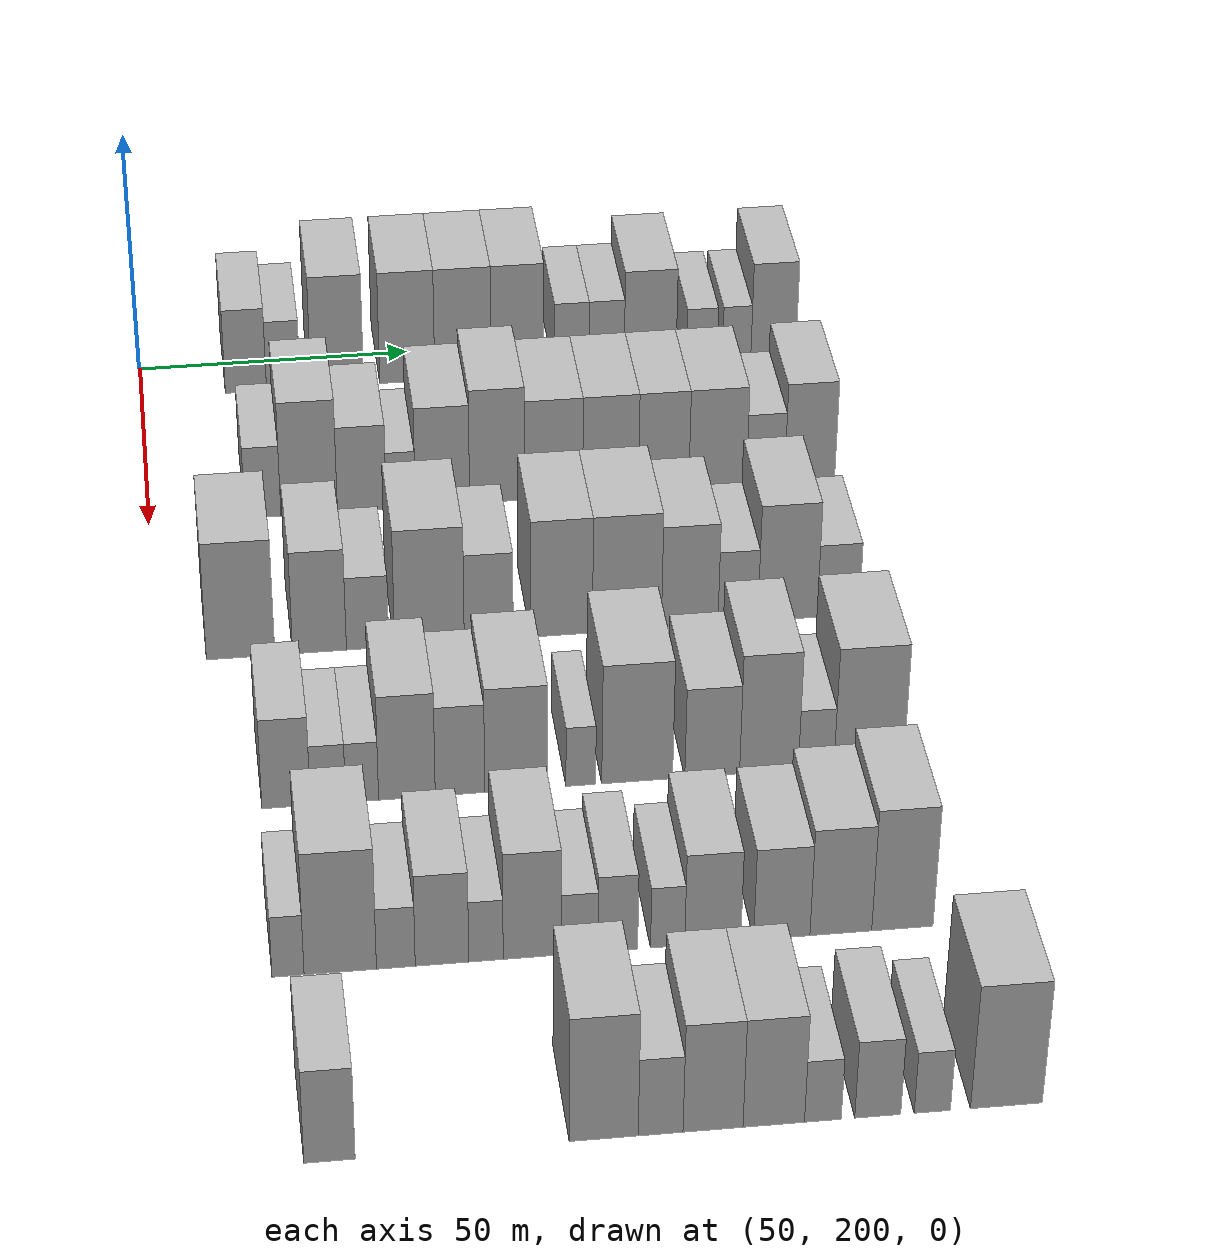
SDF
<sdf version="1.6">
 <world name="default">
  <model name="building_92">
   <static>1</static>
   <pose>50.0000 219.2616 0 0.000000 0.000000 0.000000</pose>
   <link name="link">
    <pose>0 0 9.00 0 0 0</pose>
    <collision name="collision"><geometry><box><size>20.0000 7.6127 18.0000</size></box></geometry></collision>
    <visual name="visual">
     <cast_shadows>0</cast_shadows>
     <geometry><box><size>20.0000 7.6127 18.0000</size></box></geometry>
     <material>
      <script>
       <uri>model://HANNAS_wall/materials/scripts</uri>
       <uri>model://HANNAS_wall/materials/textures</uri>
       <name>vrc/HANNAS_wall</name>
      </script>
     </material>
    </visual>
   </link>
  </model>
  <model name="building_93">
   <static>1</static>
   <pose>50.0000 226.1811 0 0.000000 0.000000 0.000000</pose>
   <link name="link">
    <pose>0 0 7.50 0 0 0</pose>
    <collision name="collision"><geometry><box><size>20.0000 6.2263 15.0000</size></box></geometry></collision>
    <visual name="visual">
     <cast_shadows>0</cast_shadows>
     <geometry><box><size>20.0000 6.2263 15.0000</size></box></geometry>
     <material>
      <script>
       <uri>model://HANNAS_wall/materials/scripts</uri>
       <uri>model://HANNAS_wall/materials/textures</uri>
       <name>vrc/HANNAS_wall</name>
      </script>
     </material>
    </visual>
   </link>
  </model>
  <model name="building_94">
   <static>1</static>
   <pose>50.0000 236.1768 0 0.000000 0.000000 0.000000</pose>
   <link name="link">
    <pose>0 0 12.00 0 0 0</pose>
    <collision name="collision"><geometry><box><size>20.0000 9.7651 24.0000</size></box></geometry></collision>
    <visual name="visual">
     <cast_shadows>0</cast_shadows>
     <geometry><box><size>20.0000 9.7651 24.0000</size></box></geometry>
     <material>
      <script>
       <uri>model://HANNAS_wall/materials/scripts</uri>
       <uri>model://HANNAS_wall/materials/textures</uri>
       <name>vrc/HANNAS_wall</name>
      </script>
     </material>
    </visual>
   </link>
  </model>
  <model name="building_95">
   <static>1</static>
   <pose>50.0000 249.1840 0 0.000000 0.000000 0.000000</pose>
   <link name="link">
    <pose>0 0 12.00 0 0 0</pose>
    <collision name="collision"><geometry><box><size>20.0000 10.2492 24.0000</size></box></geometry></collision>
    <visual name="visual">
     <cast_shadows>0</cast_shadows>
     <geometry><box><size>20.0000 10.2492 24.0000</size></box></geometry>
     <material>
      <script>
       <uri>model://HANNAS_wall/materials/scripts</uri>
       <uri>model://HANNAS_wall/materials/textures</uri>
       <name>vrc/HANNAS_wall</name>
      </script>
     </material>
    </visual>
   </link>
  </model>
  <model name="building_96">
   <static>1</static>
   <pose>50.0000 259.5714 0 0.000000 0.000000 0.000000</pose>
   <link name="link">
    <pose>0 0 12.00 0 0 0</pose>
    <collision name="collision"><geometry><box><size>20.0000 10.5257 24.0000</size></box></geometry></collision>
    <visual name="visual">
     <cast_shadows>0</cast_shadows>
     <geometry><box><size>20.0000 10.5257 24.0000</size></box></geometry>
     <material>
      <script>
       <uri>model://HANNAS_wall/materials/scripts</uri>
       <uri>model://HANNAS_wall/materials/textures</uri>
       <name>vrc/HANNAS_wall</name>
      </script>
     </material>
    </visual>
   </link>
  </model>
  <model name="building_97">
   <static>1</static>
   <pose>50.0000 269.7643 0 0.000000 0.000000 0.000000</pose>
   <link name="link">
    <pose>0 0 12.00 0 0 0</pose>
    <collision name="collision"><geometry><box><size>20.0000 9.8600 24.0000</size></box></geometry></collision>
    <visual name="visual">
     <cast_shadows>0</cast_shadows>
     <geometry><box><size>20.0000 9.8600 24.0000</size></box></geometry>
     <material>
      <script>
       <uri>model://HANNAS_wall/materials/scripts</uri>
       <uri>model://HANNAS_wall/materials/textures</uri>
       <name>vrc/HANNAS_wall</name>
      </script>
     </material>
    </visual>
   </link>
  </model>
  <model name="building_98">
   <static>1</static>
   <pose>50.0000 279.9234 0 0.000000 0.000000 0.000000</pose>
   <link name="link">
    <pose>0 0 7.50 0 0 0</pose>
    <collision name="collision"><geometry><box><size>20.0000 6.4581 15.0000</size></box></geometry></collision>
    <visual name="visual">
     <cast_shadows>0</cast_shadows>
     <geometry><box><size>20.0000 6.4581 15.0000</size></box></geometry>
     <material>
      <script>
       <uri>model://HANNAS_wall/materials/scripts</uri>
       <uri>model://HANNAS_wall/materials/textures</uri>
       <name>vrc/HANNAS_wall</name>
      </script>
     </material>
    </visual>
   </link>
  </model>
  <model name="building_99">
   <static>1</static>
   <pose>50.0000 286.4619 0 0.000000 0.000000 0.000000</pose>
   <link name="link">
    <pose>0 0 7.50 0 0 0</pose>
    <collision name="collision"><geometry><box><size>20.0000 6.6190 15.0000</size></box></geometry></collision>
    <visual name="visual">
     <cast_shadows>0</cast_shadows>
     <geometry><box><size>20.0000 6.6190 15.0000</size></box></geometry>
     <material>
      <script>
       <uri>model://HANNAS_wall/materials/scripts</uri>
       <uri>model://HANNAS_wall/materials/textures</uri>
       <name>vrc/HANNAS_wall</name>
      </script>
     </material>
    </visual>
   </link>
  </model>
  <model name="building_100">
   <static>1</static>
   <pose>50.0000 294.6523 0 0.000000 0.000000 0.000000</pose>
   <link name="link">
    <pose>0 0 10.50 0 0 0</pose>
    <collision name="collision"><geometry><box><size>20.0000 9.7616 21.0000</size></box></geometry></collision>
    <visual name="visual">
     <cast_shadows>0</cast_shadows>
     <geometry><box><size>20.0000 9.7616 21.0000</size></box></geometry>
     <material>
      <script>
       <uri>model://HANNAS_wall/materials/scripts</uri>
       <uri>model://HANNAS_wall/materials/textures</uri>
       <name>vrc/HANNAS_wall</name>
      </script>
     </material>
    </visual>
   </link>
  </model>
  <model name="building_101">
   <static>1</static>
   <pose>50.0000 304.4187 0 0.000000 0.000000 0.000000</pose>
   <link name="link">
    <pose>0 0 6.00 0 0 0</pose>
    <collision name="collision"><geometry><box><size>20.0000 5.7712 12.0000</size></box></geometry></collision>
    <visual name="visual">
     <cast_shadows>0</cast_shadows>
     <geometry><box><size>20.0000 5.7712 12.0000</size></box></geometry>
     <material>
      <script>
       <uri>model://HANNAS_wall/materials/scripts</uri>
       <uri>model://HANNAS_wall/materials/textures</uri>
       <name>vrc/HANNAS_wall</name>
      </script>
     </material>
    </visual>
   </link>
  </model>
  <model name="building_102">
   <static>1</static>
   <pose>50.0000 310.9854 0 0.000000 0.000000 0.000000</pose>
   <link name="link">
    <pose>0 0 6.00 0 0 0</pose>
    <collision name="collision"><geometry><box><size>20.0000 5.3621 12.0000</size></box></geometry></collision>
    <visual name="visual">
     <cast_shadows>0</cast_shadows>
     <geometry><box><size>20.0000 5.3621 12.0000</size></box></geometry>
     <material>
      <script>
       <uri>model://HANNAS_wall/materials/scripts</uri>
       <uri>model://HANNAS_wall/materials/textures</uri>
       <name>vrc/HANNAS_wall</name>
      </script>
     </material>
    </visual>
   </link>
  </model>
  <model name="building_103">
   <static>1</static>
   <pose>50.0000 317.9177 0 0.000000 0.000000 0.000000</pose>
   <link name="link">
    <pose>0 0 10.50 0 0 0</pose>
    <collision name="collision"><geometry><box><size>20.0000 8.5025 21.0000</size></box></geometry></collision>
    <visual name="visual">
     <cast_shadows>0</cast_shadows>
     <geometry><box><size>20.0000 8.5025 21.0000</size></box></geometry>
     <material>
      <script>
       <uri>model://HANNAS_wall/materials/scripts</uri>
       <uri>model://HANNAS_wall/materials/textures</uri>
       <name>vrc/HANNAS_wall</name>
      </script>
     </material>
    </visual>
   </link>
  </model>
  <model name="building_225">
   <static>1</static>
   <pose>90.0000 220.0633 0 0.000000 0.000000 0.000000</pose>
   <link name="link">
    <pose>0 0 7.50 0 0 0</pose>
    <collision name="collision"><geometry><box><size>20.0000 6.3695 15.0000</size></box></geometry></collision>
    <visual name="visual">
     <cast_shadows>0</cast_shadows>
     <geometry><box><size>20.0000 6.3695 15.0000</size></box></geometry>
     <material>
      <script>
       <uri>model://HANNAS_wall/materials/scripts</uri>
       <uri>model://HANNAS_wall/materials/textures</uri>
       <name>vrc/HANNAS_wall</name>
      </script>
     </material>
    </visual>
   </link>
  </model>
  <model name="building_226">
   <static>1</static>
   <pose>90.0000 228.2520 0 0.000000 0.000000 0.000000</pose>
   <link name="link">
    <pose>0 0 12.00 0 0 0</pose>
    <collision name="collision"><geometry><box><size>20.0000 10.0078 24.0000</size></box></geometry></collision>
    <visual name="visual">
     <cast_shadows>0</cast_shadows>
     <geometry><box><size>20.0000 10.0078 24.0000</size></box></geometry>
     <material>
      <script>
       <uri>model://HANNAS_wall/materials/scripts</uri>
       <uri>model://HANNAS_wall/materials/textures</uri>
       <name>vrc/HANNAS_wall</name>
      </script>
     </material>
    </visual>
   </link>
  </model>
  <model name="building_227">
   <static>1</static>
   <pose>90.0000 237.5945 0 0.000000 0.000000 0.000000</pose>
   <link name="link">
    <pose>0 0 9.00 0 0 0</pose>
    <collision name="collision"><geometry><box><size>20.0000 8.6774 18.0000</size></box></geometry></collision>
    <visual name="visual">
     <cast_shadows>0</cast_shadows>
     <geometry><box><size>20.0000 8.6774 18.0000</size></box></geometry>
     <material>
      <script>
       <uri>model://HANNAS_wall/materials/scripts</uri>
       <uri>model://HANNAS_wall/materials/textures</uri>
       <name>vrc/HANNAS_wall</name>
      </script>
     </material>
    </visual>
   </link>
  </model>
  <model name="building_228">
   <static>1</static>
   <pose>90.0000 244.5122 0 0.000000 0.000000 0.000000</pose>
   <link name="link">
    <pose>0 0 6.00 0 0 0</pose>
    <collision name="collision"><geometry><box><size>20.0000 5.1579 12.0000</size></box></geometry></collision>
    <visual name="visual">
     <cast_shadows>0</cast_shadows>
     <geometry><box><size>20.0000 5.1579 12.0000</size></box></geometry>
     <material>
      <script>
       <uri>model://HANNAS_wall/materials/scripts</uri>
       <uri>model://HANNAS_wall/materials/textures</uri>
       <name>vrc/HANNAS_wall</name>
      </script>
     </material>
    </visual>
   </link>
  </model>
  <model name="building_229">
   <static>1</static>
   <pose>90.0000 251.9325 0 0.000000 0.000000 0.000000</pose>
   <link name="link">
    <pose>0 0 10.50 0 0 0</pose>
    <collision name="collision"><geometry><box><size>20.0000 9.6826 21.0000</size></box></geometry></collision>
    <visual name="visual">
     <cast_shadows>0</cast_shadows>
     <geometry><box><size>20.0000 9.6826 21.0000</size></box></geometry>
     <material>
      <script>
       <uri>model://HANNAS_wall/materials/scripts</uri>
       <uri>model://HANNAS_wall/materials/textures</uri>
       <name>vrc/HANNAS_wall</name>
      </script>
     </material>
    </visual>
   </link>
  </model>
  <model name="building_230">
   <static>1</static>
   <pose>90.0000 261.6769 0 0.000000 0.000000 0.000000</pose>
   <link name="link">
    <pose>0 0 12.00 0 0 0</pose>
    <collision name="collision"><geometry><box><size>20.0000 9.8063 24.0000</size></box></geometry></collision>
    <visual name="visual">
     <cast_shadows>0</cast_shadows>
     <geometry><box><size>20.0000 9.8063 24.0000</size></box></geometry>
     <material>
      <script>
       <uri>model://HANNAS_wall/materials/scripts</uri>
       <uri>model://HANNAS_wall/materials/textures</uri>
       <name>vrc/HANNAS_wall</name>
      </script>
     </material>
    </visual>
   </link>
  </model>
  <model name="building_231">
   <static>1</static>
   <pose>90.0000 271.7896 0 0.000000 0.000000 0.000000</pose>
   <link name="link">
    <pose>0 0 10.50 0 0 0</pose>
    <collision name="collision"><geometry><box><size>20.0000 10.4190 21.0000</size></box></geometry></collision>
    <visual name="visual">
     <cast_shadows>0</cast_shadows>
     <geometry><box><size>20.0000 10.4190 21.0000</size></box></geometry>
     <material>
      <script>
       <uri>model://HANNAS_wall/materials/scripts</uri>
       <uri>model://HANNAS_wall/materials/textures</uri>
       <name>vrc/HANNAS_wall</name>
      </script>
     </material>
    </visual>
   </link>
  </model>
  <model name="building_232">
   <static>1</static>
   <pose>90.0000 282.0021 0 0.000000 0.000000 0.000000</pose>
   <link name="link">
    <pose>0 0 10.50 0 0 0</pose>
    <collision name="collision"><geometry><box><size>20.0000 10.0059 21.0000</size></box></geometry></collision>
    <visual name="visual">
     <cast_shadows>0</cast_shadows>
     <geometry><box><size>20.0000 10.0059 21.0000</size></box></geometry>
     <material>
      <script>
       <uri>model://HANNAS_wall/materials/scripts</uri>
       <uri>model://HANNAS_wall/materials/textures</uri>
       <name>vrc/HANNAS_wall</name>
      </script>
     </material>
    </visual>
   </link>
  </model>
  <model name="building_233">
   <static>1</static>
   <pose>90.0000 291.5477 0 0.000000 0.000000 0.000000</pose>
   <link name="link">
    <pose>0 0 10.50 0 0 0</pose>
    <collision name="collision"><geometry><box><size>20.0000 9.0853 21.0000</size></box></geometry></collision>
    <visual name="visual">
     <cast_shadows>0</cast_shadows>
     <geometry><box><size>20.0000 9.0853 21.0000</size></box></geometry>
     <material>
      <script>
       <uri>model://HANNAS_wall/materials/scripts</uri>
       <uri>model://HANNAS_wall/materials/textures</uri>
       <name>vrc/HANNAS_wall</name>
      </script>
     </material>
    </visual>
   </link>
  </model>
  <model name="building_234">
   <static>1</static>
   <pose>90.0000 301.2820 0 0.000000 0.000000 0.000000</pose>
   <link name="link">
    <pose>0 0 10.50 0 0 0</pose>
    <collision name="collision"><geometry><box><size>20.0000 10.3833 21.0000</size></box></geometry></collision>
    <visual name="visual">
     <cast_shadows>0</cast_shadows>
     <geometry><box><size>20.0000 10.3833 21.0000</size></box></geometry>
     <material>
      <script>
       <uri>model://HANNAS_wall/materials/scripts</uri>
       <uri>model://HANNAS_wall/materials/textures</uri>
       <name>vrc/HANNAS_wall</name>
      </script>
     </material>
    </visual>
   </link>
  </model>
  <model name="building_235">
   <static>1</static>
   <pose>90.0000 309.9303 0 0.000000 0.000000 0.000000</pose>
   <link name="link">
    <pose>0 0 7.50 0 0 0</pose>
    <collision name="collision"><geometry><box><size>20.0000 6.9132 15.0000</size></box></geometry></collision>
    <visual name="visual">
     <cast_shadows>0</cast_shadows>
     <geometry><box><size>20.0000 6.9132 15.0000</size></box></geometry>
     <material>
      <script>
       <uri>model://HANNAS_wall/materials/scripts</uri>
       <uri>model://HANNAS_wall/materials/textures</uri>
       <name>vrc/HANNAS_wall</name>
      </script>
     </material>
    </visual>
   </link>
  </model>
  <model name="building_236">
   <static>1</static>
   <pose>90.0000 317.9336 0 0.000000 0.000000 0.000000</pose>
   <link name="link">
    <pose>0 0 10.50 0 0 0</pose>
    <collision name="collision"><geometry><box><size>20.0000 9.0932 21.0000</size></box></geometry></collision>
    <visual name="visual">
     <cast_shadows>0</cast_shadows>
     <geometry><box><size>20.0000 9.0932 21.0000</size></box></geometry>
     <material>
      <script>
       <uri>model://HANNAS_wall/materials/scripts</uri>
       <uri>model://HANNAS_wall/materials/textures</uri>
       <name>vrc/HANNAS_wall</name>
      </script>
     </material>
    </visual>
   </link>
  </model>
  <model name="building_369">
   <static>1</static>
   <pose>130.0000 213.9681 0 0.000000 0.000000 0.000000</pose>
   <link name="link">
    <pose>0 0 12.00 0 0 0</pose>
    <collision name="collision"><geometry><box><size>20.0000 11.5250 24.0000</size></box></geometry></collision>
    <visual name="visual">
     <cast_shadows>0</cast_shadows>
     <geometry><box><size>20.0000 11.5250 24.0000</size></box></geometry>
     <material>
      <script>
       <uri>model://HANNAS_wall/materials/scripts</uri>
       <uri>model://HANNAS_wall/materials/textures</uri>
       <name>vrc/HANNAS_wall</name>
      </script>
     </material>
    </visual>
   </link>
  </model>
  <model name="building_370">
   <static>1</static>
   <pose>130.0000 227.2815 0 0.000000 0.000000 0.000000</pose>
   <link name="link">
    <pose>0 0 10.50 0 0 0</pose>
    <collision name="collision"><geometry><box><size>20.0000 9.1016 21.0000</size></box></geometry></collision>
    <visual name="visual">
     <cast_shadows>0</cast_shadows>
     <geometry><box><size>20.0000 9.1016 21.0000</size></box></geometry>
     <material>
      <script>
       <uri>model://HANNAS_wall/materials/scripts</uri>
       <uri>model://HANNAS_wall/materials/textures</uri>
       <name>vrc/HANNAS_wall</name>
      </script>
     </material>
    </visual>
   </link>
  </model>
  <model name="building_371">
   <static>1</static>
   <pose>130.0000 235.4207 0 0.000000 0.000000 0.000000</pose>
   <link name="link">
    <pose>0 0 7.50 0 0 0</pose>
    <collision name="collision"><geometry><box><size>20.0000 7.1767 15.0000</size></box></geometry></collision>
    <visual name="visual">
     <cast_shadows>0</cast_shadows>
     <geometry><box><size>20.0000 7.1767 15.0000</size></box></geometry>
     <material>
      <script>
       <uri>model://HANNAS_wall/materials/scripts</uri>
       <uri>model://HANNAS_wall/materials/textures</uri>
       <name>vrc/HANNAS_wall</name>
      </script>
     </material>
    </visual>
   </link>
  </model>
  <model name="building_372">
   <static>1</static>
   <pose>130.0000 245.9161 0 0.000000 0.000000 0.000000</pose>
   <link name="link">
    <pose>0 0 12.00 0 0 0</pose>
    <collision name="collision"><geometry><box><size>20.0000 11.8142 24.0000</size></box></geometry></collision>
    <visual name="visual">
     <cast_shadows>0</cast_shadows>
     <geometry><box><size>20.0000 11.8142 24.0000</size></box></geometry>
     <material>
      <script>
       <uri>model://HANNAS_wall/materials/scripts</uri>
       <uri>model://HANNAS_wall/materials/textures</uri>
       <name>vrc/HANNAS_wall</name>
      </script>
     </material>
    </visual>
   </link>
  </model>
  <model name="building_373">
   <static>1</static>
   <pose>130.0000 255.9901 0 0.000000 0.000000 0.000000</pose>
   <link name="link">
    <pose>0 0 9.00 0 0 0</pose>
    <collision name="collision"><geometry><box><size>20.0000 8.3339 18.0000</size></box></geometry></collision>
    <visual name="visual">
     <cast_shadows>0</cast_shadows>
     <geometry><box><size>20.0000 8.3339 18.0000</size></box></geometry>
     <material>
      <script>
       <uri>model://HANNAS_wall/materials/scripts</uri>
       <uri>model://HANNAS_wall/materials/textures</uri>
       <name>vrc/HANNAS_wall</name>
      </script>
     </material>
    </visual>
   </link>
  </model>
  <model name="building_374">
   <static>1</static>
   <pose>130.0000 268.4251 0 0.000000 0.000000 0.000000</pose>
   <link name="link">
    <pose>0 0 12.00 0 0 0</pose>
    <collision name="collision"><geometry><box><size>20.0000 10.5360 24.0000</size></box></geometry></collision>
    <visual name="visual">
     <cast_shadows>0</cast_shadows>
     <geometry><box><size>20.0000 10.5360 24.0000</size></box></geometry>
     <material>
      <script>
       <uri>model://HANNAS_wall/materials/scripts</uri>
       <uri>model://HANNAS_wall/materials/textures</uri>
       <name>vrc/HANNAS_wall</name>
      </script>
     </material>
    </visual>
   </link>
  </model>
  <model name="building_375">
   <static>1</static>
   <pose>130.0000 279.6021 0 0.000000 0.000000 0.000000</pose>
   <link name="link">
    <pose>0 0 12.00 0 0 0</pose>
    <collision name="collision"><geometry><box><size>20.0000 11.8180 24.0000</size></box></geometry></collision>
    <visual name="visual">
     <cast_shadows>0</cast_shadows>
     <geometry><box><size>20.0000 11.8180 24.0000</size></box></geometry>
     <material>
      <script>
       <uri>model://HANNAS_wall/materials/scripts</uri>
       <uri>model://HANNAS_wall/materials/textures</uri>
       <name>vrc/HANNAS_wall</name>
      </script>
     </material>
    </visual>
   </link>
  </model>
  <model name="building_376">
   <static>1</static>
   <pose>130.0000 290.3791 0 0.000000 0.000000 0.000000</pose>
   <link name="link">
    <pose>0 0 10.50 0 0 0</pose>
    <collision name="collision"><geometry><box><size>20.0000 9.7359 21.0000</size></box></geometry></collision>
    <visual name="visual">
     <cast_shadows>0</cast_shadows>
     <geometry><box><size>20.0000 9.7359 21.0000</size></box></geometry>
     <material>
      <script>
       <uri>model://HANNAS_wall/materials/scripts</uri>
       <uri>model://HANNAS_wall/materials/textures</uri>
       <name>vrc/HANNAS_wall</name>
      </script>
     </material>
    </visual>
   </link>
  </model>
  <model name="building_377">
   <static>1</static>
   <pose>130.0000 298.6742 0 0.000000 0.000000 0.000000</pose>
   <link name="link">
    <pose>0 0 7.50 0 0 0</pose>
    <collision name="collision"><geometry><box><size>20.0000 6.8543 15.0000</size></box></geometry></collision>
    <visual name="visual">
     <cast_shadows>0</cast_shadows>
     <geometry><box><size>20.0000 6.8543 15.0000</size></box></geometry>
     <material>
      <script>
       <uri>model://HANNAS_wall/materials/scripts</uri>
       <uri>model://HANNAS_wall/materials/textures</uri>
       <name>vrc/HANNAS_wall</name>
      </script>
     </material>
    </visual>
   </link>
  </model>
  <model name="building_378">
   <static>1</static>
   <pose>130.0000 307.2289 0 0.000000 0.000000 0.000000</pose>
   <link name="link">
    <pose>0 0 12.00 0 0 0</pose>
    <collision name="collision"><geometry><box><size>20.0000 10.2551 24.0000</size></box></geometry></collision>
    <visual name="visual">
     <cast_shadows>0</cast_shadows>
     <geometry><box><size>20.0000 10.2551 24.0000</size></box></geometry>
     <material>
      <script>
       <uri>model://HANNAS_wall/materials/scripts</uri>
       <uri>model://HANNAS_wall/materials/textures</uri>
       <name>vrc/HANNAS_wall</name>
      </script>
     </material>
    </visual>
   </link>
  </model>
  <model name="building_379">
   <static>1</static>
   <pose>130.0000 315.9871 0 0.000000 0.000000 0.000000</pose>
   <link name="link">
    <pose>0 0 7.50 0 0 0</pose>
    <collision name="collision"><geometry><box><size>20.0000 7.2614 15.0000</size></box></geometry></collision>
    <visual name="visual">
     <cast_shadows>0</cast_shadows>
     <geometry><box><size>20.0000 7.2614 15.0000</size></box></geometry>
     <material>
      <script>
       <uri>model://HANNAS_wall/materials/scripts</uri>
       <uri>model://HANNAS_wall/materials/textures</uri>
       <name>vrc/HANNAS_wall</name>
      </script>
     </material>
    </visual>
   </link>
  </model>
  <model name="building_497">
   <static>1</static>
   <pose>170.0000 219.1140 0 0.000000 0.000000 0.000000</pose>
   <link name="link">
    <pose>0 0 9.00 0 0 0</pose>
    <collision name="collision"><geometry><box><size>20.0000 7.7743 18.0000</size></box></geometry></collision>
    <visual name="visual">
     <cast_shadows>0</cast_shadows>
     <geometry><box><size>20.0000 7.7743 18.0000</size></box></geometry>
     <material>
      <script>
       <uri>model://HANNAS_wall/materials/scripts</uri>
       <uri>model://HANNAS_wall/materials/textures</uri>
       <name>vrc/HANNAS_wall</name>
      </script>
     </material>
    </visual>
   </link>
  </model>
  <model name="building_498">
   <static>1</static>
   <pose>170.0000 225.8451 0 0.000000 0.000000 0.000000</pose>
   <link name="link">
    <pose>0 0 6.00 0 0 0</pose>
    <collision name="collision"><geometry><box><size>20.0000 5.6880 12.0000</size></box></geometry></collision>
    <visual name="visual">
     <cast_shadows>0</cast_shadows>
     <geometry><box><size>20.0000 5.6880 12.0000</size></box></geometry>
     <material>
      <script>
       <uri>model://HANNAS_wall/materials/scripts</uri>
       <uri>model://HANNAS_wall/materials/textures</uri>
       <name>vrc/HANNAS_wall</name>
      </script>
     </material>
    </visual>
   </link>
  </model>
  <model name="building_499">
   <static>1</static>
   <pose>170.0000 231.3426 0 0.000000 0.000000 0.000000</pose>
   <link name="link">
    <pose>0 0 6.00 0 0 0</pose>
    <collision name="collision"><geometry><box><size>20.0000 5.3070 12.0000</size></box></geometry></collision>
    <visual name="visual">
     <cast_shadows>0</cast_shadows>
     <geometry><box><size>20.0000 5.3070 12.0000</size></box></geometry>
     <material>
      <script>
       <uri>model://HANNAS_wall/materials/scripts</uri>
       <uri>model://HANNAS_wall/materials/textures</uri>
       <name>vrc/HANNAS_wall</name>
      </script>
     </material>
    </visual>
   </link>
  </model>
  <model name="building_500">
   <static>1</static>
   <pose>170.0000 238.5682 0 0.000000 0.000000 0.000000</pose>
   <link name="link">
    <pose>0 0 10.50 0 0 0</pose>
    <collision name="collision"><geometry><box><size>20.0000 9.1442 21.0000</size></box></geometry></collision>
    <visual name="visual">
     <cast_shadows>0</cast_shadows>
     <geometry><box><size>20.0000 9.1442 21.0000</size></box></geometry>
     <material>
      <script>
       <uri>model://HANNAS_wall/materials/scripts</uri>
       <uri>model://HANNAS_wall/materials/textures</uri>
       <name>vrc/HANNAS_wall</name>
      </script>
     </material>
    </visual>
   </link>
  </model>
  <model name="building_501">
   <static>1</static>
   <pose>170.0000 247.1421 0 0.000000 0.000000 0.000000</pose>
   <link name="link">
    <pose>0 0 9.00 0 0 0</pose>
    <collision name="collision"><geometry><box><size>20.0000 8.0035 18.0000</size></box></geometry></collision>
    <visual name="visual">
     <cast_shadows>0</cast_shadows>
     <geometry><box><size>20.0000 8.0035 18.0000</size></box></geometry>
     <material>
      <script>
       <uri>model://HANNAS_wall/materials/scripts</uri>
       <uri>model://HANNAS_wall/materials/textures</uri>
       <name>vrc/HANNAS_wall</name>
      </script>
     </material>
    </visual>
   </link>
  </model>
  <model name="building_502">
   <static>1</static>
   <pose>170.0000 256.2318 0 0.000000 0.000000 0.000000</pose>
   <link name="link">
    <pose>0 0 10.50 0 0 0</pose>
    <collision name="collision"><geometry><box><size>20.0000 10.1759 21.0000</size></box></geometry></collision>
    <visual name="visual">
     <cast_shadows>0</cast_shadows>
     <geometry><box><size>20.0000 10.1759 21.0000</size></box></geometry>
     <material>
      <script>
       <uri>model://HANNAS_wall/materials/scripts</uri>
       <uri>model://HANNAS_wall/materials/textures</uri>
       <name>vrc/HANNAS_wall</name>
      </script>
     </material>
    </visual>
   </link>
  </model>
  <model name="building_503">
   <static>1</static>
   <pose>170.0000 266.7391 0 0.000000 0.000000 0.000000</pose>
   <link name="link">
    <pose>0 0 6.00 0 0 0</pose>
    <collision name="collision"><geometry><box><size>20.0000 4.8388 12.0000</size></box></geometry></collision>
    <visual name="visual">
     <cast_shadows>0</cast_shadows>
     <geometry><box><size>20.0000 4.8388 12.0000</size></box></geometry>
     <material>
      <script>
       <uri>model://HANNAS_wall/materials/scripts</uri>
       <uri>model://HANNAS_wall/materials/textures</uri>
       <name>vrc/HANNAS_wall</name>
      </script>
     </material>
    </visual>
   </link>
  </model>
  <model name="building_504">
   <static>1</static>
   <pose>170.0000 275.9370 0 0.000000 0.000000 0.000000</pose>
   <link name="link">
    <pose>0 0 12.00 0 0 0</pose>
    <collision name="collision"><geometry><box><size>20.0000 11.5570 24.0000</size></box></geometry></collision>
    <visual name="visual">
     <cast_shadows>0</cast_shadows>
     <geometry><box><size>20.0000 11.5570 24.0000</size></box></geometry>
     <material>
      <script>
       <uri>model://HANNAS_wall/materials/scripts</uri>
       <uri>model://HANNAS_wall/materials/textures</uri>
       <name>vrc/HANNAS_wall</name>
      </script>
     </material>
    </visual>
   </link>
  </model>
  <model name="building_505">
   <static>1</static>
   <pose>170.0000 288.2011 0 0.000000 0.000000 0.000000</pose>
   <link name="link">
    <pose>0 0 9.00 0 0 0</pose>
    <collision name="collision"><geometry><box><size>20.0000 8.9712 18.0000</size></box></geometry></collision>
    <visual name="visual">
     <cast_shadows>0</cast_shadows>
     <geometry><box><size>20.0000 8.9712 18.0000</size></box></geometry>
     <material>
      <script>
       <uri>model://HANNAS_wall/materials/scripts</uri>
       <uri>model://HANNAS_wall/materials/textures</uri>
       <name>vrc/HANNAS_wall</name>
      </script>
     </material>
    </visual>
   </link>
  </model>
  <model name="building_506">
   <static>1</static>
   <pose>170.0000 297.5136 0 0.000000 0.000000 0.000000</pose>
   <link name="link">
    <pose>0 0 12.00 0 0 0</pose>
    <collision name="collision"><geometry><box><size>20.0000 9.6539 24.0000</size></box></geometry></collision>
    <visual name="visual">
     <cast_shadows>0</cast_shadows>
     <geometry><box><size>20.0000 9.6539 24.0000</size></box></geometry>
     <material>
      <script>
       <uri>model://HANNAS_wall/materials/scripts</uri>
       <uri>model://HANNAS_wall/materials/textures</uri>
       <name>vrc/HANNAS_wall</name>
      </script>
     </material>
    </visual>
   </link>
  </model>
  <model name="building_507">
   <static>1</static>
   <pose>170.0000 305.2744 0 0.000000 0.000000 0.000000</pose>
   <link name="link">
    <pose>0 0 6.00 0 0 0</pose>
    <collision name="collision"><geometry><box><size>20.0000 5.8676 12.0000</size></box></geometry></collision>
    <visual name="visual">
     <cast_shadows>0</cast_shadows>
     <geometry><box><size>20.0000 5.8676 12.0000</size></box></geometry>
     <material>
      <script>
       <uri>model://HANNAS_wall/materials/scripts</uri>
       <uri>model://HANNAS_wall/materials/textures</uri>
       <name>vrc/HANNAS_wall</name>
      </script>
     </material>
    </visual>
   </link>
  </model>
  <model name="building_508">
   <static>1</static>
   <pose>170.0000 313.9608 0 0.000000 0.000000 0.000000</pose>
   <link name="link">
    <pose>0 0 12.00 0 0 0</pose>
    <collision name="collision"><geometry><box><size>20.0000 11.5051 24.0000</size></box></geometry></collision>
    <visual name="visual">
     <cast_shadows>0</cast_shadows>
     <geometry><box><size>20.0000 11.5051 24.0000</size></box></geometry>
     <material>
      <script>
       <uri>model://HANNAS_wall/materials/scripts</uri>
       <uri>model://HANNAS_wall/materials/textures</uri>
       <name>vrc/HANNAS_wall</name>
      </script>
     </material>
    </visual>
   </link>
  </model>
  <model name="building_640">
   <static>1</static>
   <pose>210.0000 216.8835 0 0.000000 0.000000 0.000000</pose>
   <link name="link">
    <pose>0 0 6.00 0 0 0</pose>
    <collision name="collision"><geometry><box><size>20.0000 4.8900 12.0000</size></box></geometry></collision>
    <visual name="visual">
     <cast_shadows>0</cast_shadows>
     <geometry><box><size>20.0000 4.8900 12.0000</size></box></geometry>
     <material>
      <script>
       <uri>model://HANNAS_wall/materials/scripts</uri>
       <uri>model://HANNAS_wall/materials/textures</uri>
       <name>vrc/HANNAS_wall</name>
      </script>
     </material>
    </visual>
   </link>
  </model>
  <model name="building_641">
   <static>1</static>
   <pose>210.0000 224.8542 0 0.000000 0.000000 0.000000</pose>
   <link name="link">
    <pose>0 0 12.00 0 0 0</pose>
    <collision name="collision"><geometry><box><size>20.0000 11.0516 24.0000</size></box></geometry></collision>
    <visual name="visual">
     <cast_shadows>0</cast_shadows>
     <geometry><box><size>20.0000 11.0516 24.0000</size></box></geometry>
     <material>
      <script>
       <uri>model://HANNAS_wall/materials/scripts</uri>
       <uri>model://HANNAS_wall/materials/textures</uri>
       <name>vrc/HANNAS_wall</name>
      </script>
     </material>
    </visual>
   </link>
  </model>
  <model name="building_642">
   <static>1</static>
   <pose>210.0000 233.3496 0 0.000000 0.000000 0.000000</pose>
   <link name="link">
    <pose>0 0 6.00 0 0 0</pose>
    <collision name="collision"><geometry><box><size>20.0000 5.9392 12.0000</size></box></geometry></collision>
    <visual name="visual">
     <cast_shadows>0</cast_shadows>
     <geometry><box><size>20.0000 5.9392 12.0000</size></box></geometry>
     <material>
      <script>
       <uri>model://HANNAS_wall/materials/scripts</uri>
       <uri>model://HANNAS_wall/materials/textures</uri>
       <name>vrc/HANNAS_wall</name>
      </script>
     </material>
    </visual>
   </link>
  </model>
  <model name="building_643">
   <static>1</static>
   <pose>210.0000 240.4221 0 0.000000 0.000000 0.000000</pose>
   <link name="link">
    <pose>0 0 9.00 0 0 0</pose>
    <collision name="collision"><geometry><box><size>20.0000 8.2057 18.0000</size></box></geometry></collision>
    <visual name="visual">
     <cast_shadows>0</cast_shadows>
     <geometry><box><size>20.0000 8.2057 18.0000</size></box></geometry>
     <material>
      <script>
       <uri>model://HANNAS_wall/materials/scripts</uri>
       <uri>model://HANNAS_wall/materials/textures</uri>
       <name>vrc/HANNAS_wall</name>
      </script>
     </material>
    </visual>
   </link>
  </model>
  <model name="building_644">
   <static>1</static>
   <pose>210.0000 247.1738 0 0.000000 0.000000 0.000000</pose>
   <link name="link">
    <pose>0 0 6.00 0 0 0</pose>
    <collision name="collision"><geometry><box><size>20.0000 5.2976 12.0000</size></box></geometry></collision>
    <visual name="visual">
     <cast_shadows>0</cast_shadows>
     <geometry><box><size>20.0000 5.2976 12.0000</size></box></geometry>
     <material>
      <script>
       <uri>model://HANNAS_wall/materials/scripts</uri>
       <uri>model://HANNAS_wall/materials/textures</uri>
       <name>vrc/HANNAS_wall</name>
      </script>
     </material>
    </visual>
   </link>
  </model>
  <model name="building_645">
   <static>1</static>
   <pose>210.0000 254.2770 0 0.000000 0.000000 0.000000</pose>
   <link name="link">
    <pose>0 0 10.50 0 0 0</pose>
    <collision name="collision"><geometry><box><size>20.0000 8.9088 21.0000</size></box></geometry></collision>
    <visual name="visual">
     <cast_shadows>0</cast_shadows>
     <geometry><box><size>20.0000 8.9088 21.0000</size></box></geometry>
     <material>
      <script>
       <uri>model://HANNAS_wall/materials/scripts</uri>
       <uri>model://HANNAS_wall/materials/textures</uri>
       <name>vrc/HANNAS_wall</name>
      </script>
     </material>
    </visual>
   </link>
  </model>
  <model name="building_646">
   <static>1</static>
   <pose>210.0000 261.5825 0 0.000000 0.000000 0.000000</pose>
   <link name="link">
    <pose>0 0 6.00 0 0 0</pose>
    <collision name="collision"><geometry><box><size>20.0000 5.7023 12.0000</size></box></geometry></collision>
    <visual name="visual">
     <cast_shadows>0</cast_shadows>
     <geometry><box><size>20.0000 5.7023 12.0000</size></box></geometry>
     <material>
      <script>
       <uri>model://HANNAS_wall/materials/scripts</uri>
       <uri>model://HANNAS_wall/materials/textures</uri>
       <name>vrc/HANNAS_wall</name>
      </script>
     </material>
    </visual>
   </link>
  </model>
  <model name="building_647">
   <static>1</static>
   <pose>210.0000 267.5010 0 0.000000 0.000000 0.000000</pose>
   <link name="link">
    <pose>0 0 7.50 0 0 0</pose>
    <collision name="collision"><geometry><box><size>20.0000 6.1347 15.0000</size></box></geometry></collision>
    <visual name="visual">
     <cast_shadows>0</cast_shadows>
     <geometry><box><size>20.0000 6.1347 15.0000</size></box></geometry>
     <material>
      <script>
       <uri>model://HANNAS_wall/materials/scripts</uri>
       <uri>model://HANNAS_wall/materials/textures</uri>
       <name>vrc/HANNAS_wall</name>
      </script>
     </material>
    </visual>
   </link>
  </model>
  <model name="building_648">
   <static>1</static>
   <pose>210.0000 275.2144 0 0.000000 0.000000 0.000000</pose>
   <link name="link">
    <pose>0 0 6.00 0 0 0</pose>
    <collision name="collision"><geometry><box><size>20.0000 5.2921 12.0000</size></box></geometry></collision>
    <visual name="visual">
     <cast_shadows>0</cast_shadows>
     <geometry><box><size>20.0000 5.2921 12.0000</size></box></geometry>
     <material>
      <script>
       <uri>model://HANNAS_wall/materials/scripts</uri>
       <uri>model://HANNAS_wall/materials/textures</uri>
       <name>vrc/HANNAS_wall</name>
      </script>
     </material>
    </visual>
   </link>
  </model>
  <model name="building_649">
   <static>1</static>
   <pose>210.0000 282.2214 0 0.000000 0.000000 0.000000</pose>
   <link name="link">
    <pose>0 0 9.00 0 0 0</pose>
    <collision name="collision"><geometry><box><size>20.0000 8.7218 18.0000</size></box></geometry></collision>
    <visual name="visual">
     <cast_shadows>0</cast_shadows>
     <geometry><box><size>20.0000 8.7218 18.0000</size></box></geometry>
     <material>
      <script>
       <uri>model://HANNAS_wall/materials/scripts</uri>
       <uri>model://HANNAS_wall/materials/textures</uri>
       <name>vrc/HANNAS_wall</name>
      </script>
     </material>
    </visual>
   </link>
  </model>
  <model name="building_650">
   <static>1</static>
   <pose>210.0000 292.9753 0 0.000000 0.000000 0.000000</pose>
   <link name="link">
    <pose>0 0 9.00 0 0 0</pose>
    <collision name="collision"><geometry><box><size>20.0000 8.7861 18.0000</size></box></geometry></collision>
    <visual name="visual">
     <cast_shadows>0</cast_shadows>
     <geometry><box><size>20.0000 8.7861 18.0000</size></box></geometry>
     <material>
      <script>
       <uri>model://HANNAS_wall/materials/scripts</uri>
       <uri>model://HANNAS_wall/materials/textures</uri>
       <name>vrc/HANNAS_wall</name>
      </script>
     </material>
    </visual>
   </link>
  </model>
  <model name="building_651">
   <static>1</static>
   <pose>210.0000 302.1987 0 0.000000 0.000000 0.000000</pose>
   <link name="link">
    <pose>0 0 10.50 0 0 0</pose>
    <collision name="collision"><geometry><box><size>20.0000 9.6606 21.0000</size></box></geometry></collision>
    <visual name="visual">
     <cast_shadows>0</cast_shadows>
     <geometry><box><size>20.0000 9.6606 21.0000</size></box></geometry>
     <material>
      <script>
       <uri>model://HANNAS_wall/materials/scripts</uri>
       <uri>model://HANNAS_wall/materials/textures</uri>
       <name>vrc/HANNAS_wall</name>
      </script>
     </material>
    </visual>
   </link>
  </model>
  <model name="building_652">
   <static>1</static>
   <pose>210.0000 311.8309 0 0.000000 0.000000 0.000000</pose>
   <link name="link">
    <pose>0 0 12.00 0 0 0</pose>
    <collision name="collision"><geometry><box><size>20.0000 9.6037 24.0000</size></box></geometry></collision>
    <visual name="visual">
     <cast_shadows>0</cast_shadows>
     <geometry><box><size>20.0000 9.6037 24.0000</size></box></geometry>
     <material>
      <script>
       <uri>model://HANNAS_wall/materials/scripts</uri>
       <uri>model://HANNAS_wall/materials/textures</uri>
       <name>vrc/HANNAS_wall</name>
      </script>
     </material>
    </visual>
   </link>
  </model>
  <model name="building_779">
   <static>1</static>
   <pose>250.0000 220.3262 0 0.000000 0.000000 0.000000</pose>
   <link name="link">
    <pose>0 0 9.00 0 0 0</pose>
    <collision name="collision"><geometry><box><size>20.0000 7.4180 18.0000</size></box></geometry></collision>
    <visual name="visual">
     <cast_shadows>0</cast_shadows>
     <geometry><box><size>20.0000 7.4180 18.0000</size></box></geometry>
     <material>
      <script>
       <uri>model://HANNAS_wall/materials/scripts</uri>
       <uri>model://HANNAS_wall/materials/textures</uri>
       <name>vrc/HANNAS_wall</name>
      </script>
     </material>
    </visual>
   </link>
  </model>
  <model name="building_780">
   <static>1</static>
   <pose>250.0000 260.1758 0 0.000000 0.000000 0.000000</pose>
   <link name="link">
    <pose>0 0 12.00 0 0 0</pose>
    <collision name="collision"><geometry><box><size>20.0000 10.0938 24.0000</size></box></geometry></collision>
    <visual name="visual">
     <cast_shadows>0</cast_shadows>
     <geometry><box><size>20.0000 10.0938 24.0000</size></box></geometry>
     <material>
      <script>
       <uri>model://HANNAS_wall/materials/scripts</uri>
       <uri>model://HANNAS_wall/materials/textures</uri>
       <name>vrc/HANNAS_wall</name>
      </script>
     </material>
    </visual>
   </link>
  </model>
  <model name="building_781">
   <static>1</static>
   <pose>250.0000 268.5075 0 0.000000 0.000000 0.000000</pose>
   <link name="link">
    <pose>0 0 7.50 0 0 0</pose>
    <collision name="collision"><geometry><box><size>20.0000 6.5697 15.0000</size></box></geometry></collision>
    <visual name="visual">
     <cast_shadows>0</cast_shadows>
     <geometry><box><size>20.0000 6.5697 15.0000</size></box></geometry>
     <material>
      <script>
       <uri>model://HANNAS_wall/materials/scripts</uri>
       <uri>model://HANNAS_wall/materials/textures</uri>
       <name>vrc/HANNAS_wall</name>
      </script>
     </material>
    </visual>
   </link>
  </model>
  <model name="building_782">
   <static>1</static>
   <pose>250.0000 276.2031 0 0.000000 0.000000 0.000000</pose>
   <link name="link">
    <pose>0 0 10.50 0 0 0</pose>
    <collision name="collision"><geometry><box><size>20.0000 8.8215 21.0000</size></box></geometry></collision>
    <visual name="visual">
     <cast_shadows>0</cast_shadows>
     <geometry><box><size>20.0000 8.8215 21.0000</size></box></geometry>
     <material>
      <script>
       <uri>model://HANNAS_wall/materials/scripts</uri>
       <uri>model://HANNAS_wall/materials/textures</uri>
       <name>vrc/HANNAS_wall</name>
      </script>
     </material>
    </visual>
   </link>
  </model>
  <model name="building_783">
   <static>1</static>
   <pose>250.0000 285.1504 0 0.000000 0.000000 0.000000</pose>
   <link name="link">
    <pose>0 0 10.50 0 0 0</pose>
    <collision name="collision"><geometry><box><size>20.0000 9.0730 21.0000</size></box></geometry></collision>
    <visual name="visual">
     <cast_shadows>0</cast_shadows>
     <geometry><box><size>20.0000 9.0730 21.0000</size></box></geometry>
     <material>
      <script>
       <uri>model://HANNAS_wall/materials/scripts</uri>
       <uri>model://HANNAS_wall/materials/textures</uri>
       <name>vrc/HANNAS_wall</name>
      </script>
     </material>
    </visual>
   </link>
  </model>
  <model name="building_784">
   <static>1</static>
   <pose>250.0000 292.3974 0 0.000000 0.000000 0.000000</pose>
   <link name="link">
    <pose>0 0 6.00 0 0 0</pose>
    <collision name="collision"><geometry><box><size>20.0000 5.4211 12.0000</size></box></geometry></collision>
    <visual name="visual">
     <cast_shadows>0</cast_shadows>
     <geometry><box><size>20.0000 5.4211 12.0000</size></box></geometry>
     <material>
      <script>
       <uri>model://HANNAS_wall/materials/scripts</uri>
       <uri>model://HANNAS_wall/materials/textures</uri>
       <name>vrc/HANNAS_wall</name>
      </script>
     </material>
    </visual>
   </link>
  </model>
  <model name="building_785">
   <static>1</static>
   <pose>250.0000 300.5148 0 0.000000 0.000000 0.000000</pose>
   <link name="link">
    <pose>0 0 7.50 0 0 0</pose>
    <collision name="collision"><geometry><box><size>20.0000 6.8137 15.0000</size></box></geometry></collision>
    <visual name="visual">
     <cast_shadows>0</cast_shadows>
     <geometry><box><size>20.0000 6.8137 15.0000</size></box></geometry>
     <material>
      <script>
       <uri>model://HANNAS_wall/materials/scripts</uri>
       <uri>model://HANNAS_wall/materials/textures</uri>
       <name>vrc/HANNAS_wall</name>
      </script>
     </material>
    </visual>
   </link>
  </model>
  <model name="building_786">
   <static>1</static>
   <pose>250.0000 308.6088 0 0.000000 0.000000 0.000000</pose>
   <link name="link">
    <pose>0 0 6.00 0 0 0</pose>
    <collision name="collision"><geometry><box><size>20.0000 5.3742 12.0000</size></box></geometry></collision>
    <visual name="visual">
     <cast_shadows>0</cast_shadows>
     <geometry><box><size>20.0000 5.3742 12.0000</size></box></geometry>
     <material>
      <script>
       <uri>model://HANNAS_wall/materials/scripts</uri>
       <uri>model://HANNAS_wall/materials/textures</uri>
       <name>vrc/HANNAS_wall</name>
      </script>
     </material>
    </visual>
   </link>
  </model>
  <model name="building_787">
   <static>1</static>
   <pose>250.0000 319.6438 0 0.000000 0.000000 0.000000</pose>
   <link name="link">
    <pose>0 0 12.00 0 0 0</pose>
    <collision name="collision"><geometry><box><size>20.0000 10.6958 24.0000</size></box></geometry></collision>
    <visual name="visual">
     <cast_shadows>0</cast_shadows>
     <geometry><box><size>20.0000 10.6958 24.0000</size></box></geometry>
     <material>
      <script>
       <uri>model://HANNAS_wall/materials/scripts</uri>
       <uri>model://HANNAS_wall/materials/textures</uri>
       <name>vrc/HANNAS_wall</name>
      </script>
     </material>
    </visual>
   </link>
  </model>
 </world>
</sdf>
